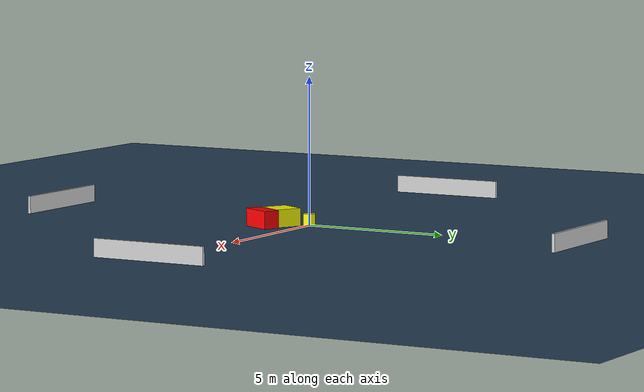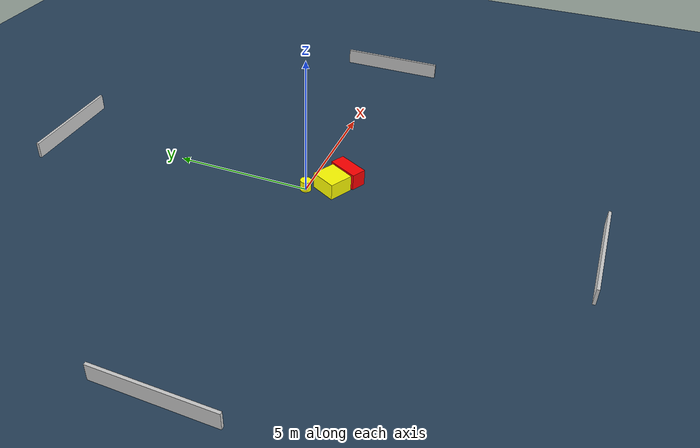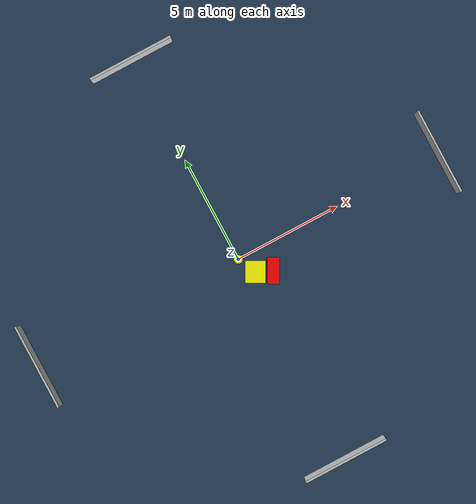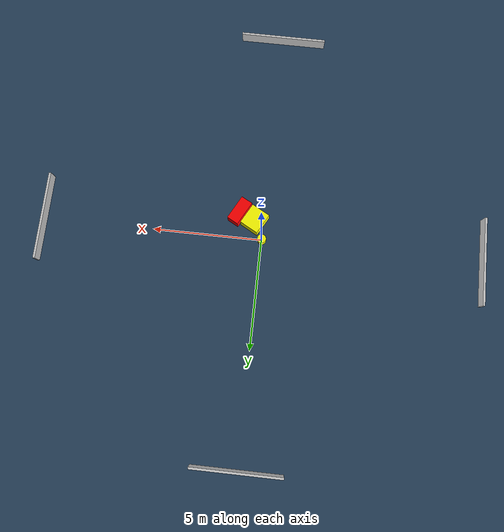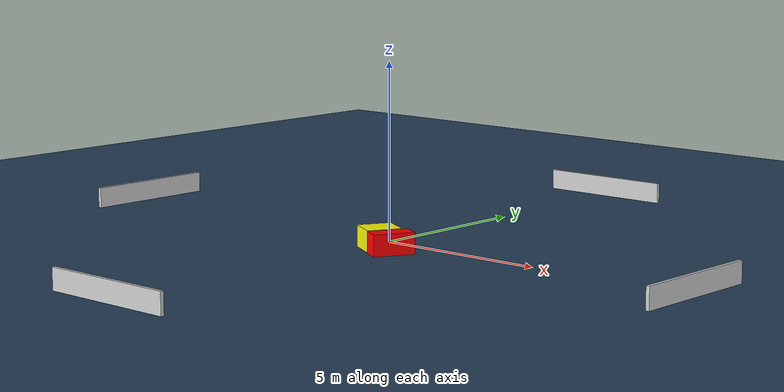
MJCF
<?xml version="1.0" ?>
<mujoco model="generated_environment">
  <option timestep="0.01" integrator="RK4" cone="elliptic"/>
  <default>
    <geom density="1"/>
  </default>
  <asset>
    <texture builtin="gradient" height="3072" name="skybox" rgb1="0.3 0.5 0.7" rgb2="0 0 0" type="skybox" width="512"/>
    <texture builtin="checker" height="300" name="groundplane" rgb1="0.2 0.3 0.4" rgb2="0.1 0.2 0.3" type="2d" width="300"/>
    <material name="groundplane" reflectance="0.2" texrepeat="5 5" texture="groundplane"/>
  </asset>
  <worldbody>
    <light dir="0 0 -1" directional="true" pos="0 0 1.5"/>
    <geom condim="3" friction="0.5 0.005 0.001" material="groundplane" name="floor" pos="0 0 0" size="0 0 0.05" type="plane"/>
    <body name="walls">
      <geom name="wall_1" condim="4" pos="-10.0 0.0 0.3" rgba="0.800000011920929 0.800000011920929 0.800000011920929 1.0" size="0.05 2.0 0.3" type="box"/>
      <geom name="wall_2" condim="4" pos="10.0 0.0 0.3" rgba="0.800000011920929 0.800000011920929 0.800000011920929 1.0" size="0.05 2.0 0.3" type="box"/>
      <geom name="wall_3" condim="4" pos="0.0 -10.0 0.3" rgba="0.800000011920929 0.800000011920929 0.800000011920929 1.0" size="2.0 0.05 0.3" type="box"/>
      <geom name="wall_4" condim="4" pos="0.0 10.0 0.3" rgba="0.800000011920929 0.800000011920929 0.800000011920929 1.0" size="2.0 0.05 0.3" type="box"/>
    </body>
    <body name="robot">
      <joint name="joint_x" type="slide" pos="0 0 0" axis="1 0 0"/>
      <joint name="joint_y" type="slide" pos="0 0 0" axis="0 1 0"/>
      <geom name="robot" type="cylinder" pos="0.0 0.0 0.2" size="0.2 0.2 0.0" mass="5.0" friction="1.0 0.005 0.0001" condim="4" rgba="1.0 1.0 0.0 1.0"/>
    </body>
    <body name="obstacle_1_movable">
      <geom name="obstacle_1_movable" condim="4" pos="0.40317059904065206 -0.8444741567969906 0.3" euler="0 0 151.425184288222" friction="0.0 0.005 0.001" rgba="1.0 1.0 0.0 1.0" size="0.44805322360365696 0.49053676138070595 0.3" type="box" mass="0.1"/>
      <joint type="free"/>
    </body>
    <body name="obstacle_2_static">
      <geom name="obstacle_2_static" condim="4" pos="1.123452129572201 -1.1622838826065178 0.3" euler="0 0 241.8348114659465" friction="0.0 0.005 0.001" rgba="1.0 0.0 0.0 1.0" size="0.5832880573424895 0.27516253001289964 0.3" type="box"/>
    </body>
  </worldbody>
  <actuator>
    <motor name="actuator_x" joint="joint_x" gear="1" ctrlrange="-1 1"/>
    <motor name="actuator_y" joint="joint_y" gear="1" ctrlrange="-1 1"/>
  </actuator>
</mujoco>
